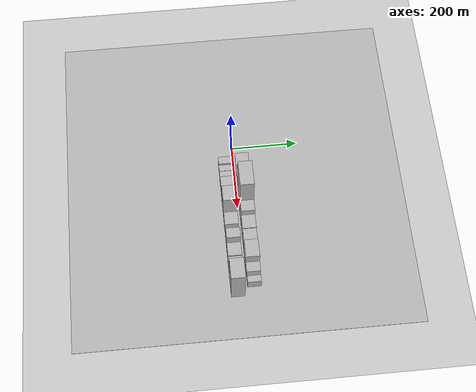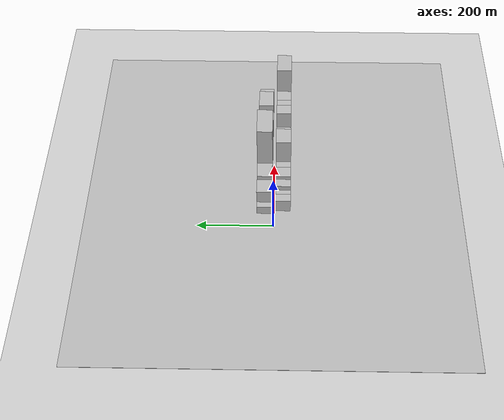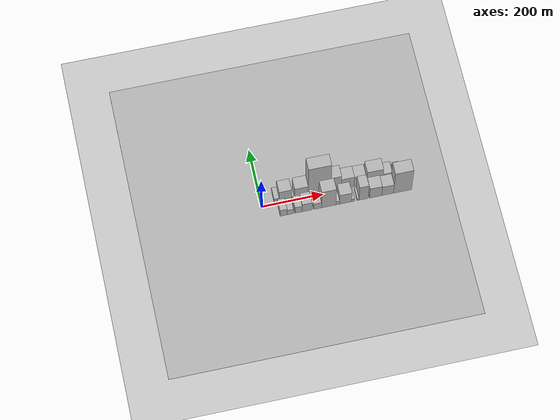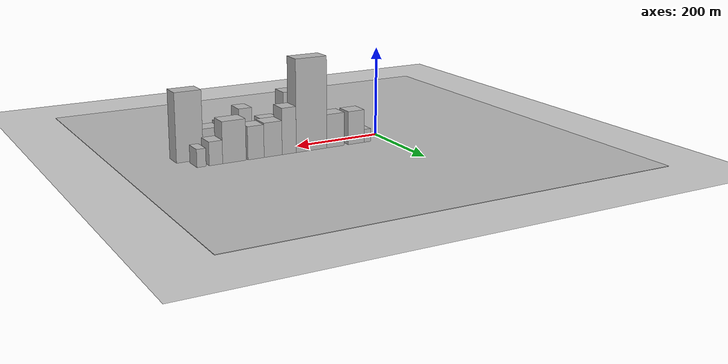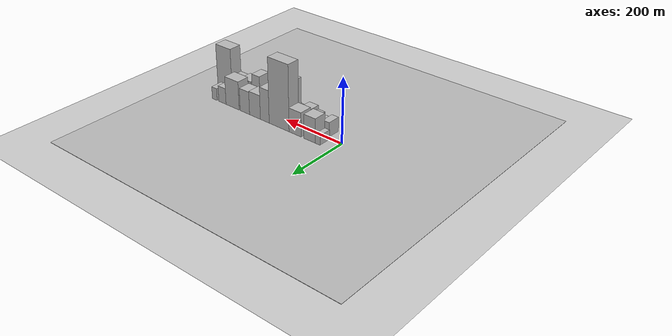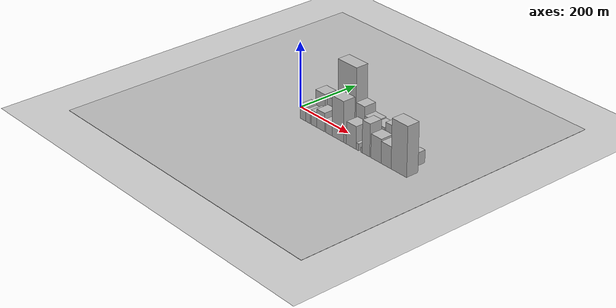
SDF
<?xml version="1.0" encoding="utf-8"?>

<sdf version="1.6">

   <world name="default">

      <gui fullscreen="0">

         <camera name="user_camera">

            <pose>-15 0 4.57585 0 0 0</pose>

            <view_controller>orbit</view_controller>

         </camera>

      </gui>

      <scene>

         <sky>

           <clouds>

             <speed>12</speed>

           </clouds>

         </sky>

         <ambient>0.4 0.4 0.4 1</ambient>

         <background>0.7 0.7 0.7 1</background>

         <shadows>1</shadows>

      </scene>

      <gravity>0 0 -9.8066</gravity>

      <magnetic_field>6e-06 2.3e-05 -4.2e-05</magnetic_field>

      <physics default="0" name="default_physics" type="ode">

         <ode>

            <solver>

               <type>quick</type>

               <iters>10</iters>

               <sor>1.0</sor>

               <use_dynamic_moi_rescaling>0</use_dynamic_moi_rescaling>

            </solver>

            <constraints>

               <cfm>0</cfm>

               <erp>0.2</erp>

               <contact_max_correcting_vel>100</contact_max_correcting_vel>

               <contact_surface_layer>0.001</contact_surface_layer>

            </constraints>

         </ode>

         <max_step_size>0.004</max_step_size>

         <real_time_factor>1</real_time_factor>

         <real_time_update_rate>250</real_time_update_rate>

      </physics>

      <light name="sun" type="directional">

         <cast_shadows>1</cast_shadows>

         <pose>0 0 10 0 0 0</pose>

         <diffuse>0.8 0.8 0.8 1</diffuse>

         <specular>0.2 0.2 0.2 1</specular>

         <attenuation>

            <range>1000</range>

            <constant>0.9</constant>

            <linear>0.01</linear>

            <quadratic>0.001</quadratic>

         </attenuation>

         <direction>-0.5 0.1 -0.9</direction>

      </light>

      <include>

         <name>ground_plane_1</name>

         <uri>model://HANNAS_ground_plane</uri>

         <pose>0 0 0  0 0 0</pose>

      </include>

      <include>

         <name>ground_plane_2</name>

         <uri>model://HANNAS_ground_plane</uri>

         <pose>100 0 0  0 0 0</pose>

      </include>

      <model name="building_1">

         <static>1</static>

         <pose frame="">48.2652 24.5000 0 0.000000 0.000000 1.570796</pose>

         <link name="link">

            <pose frame="">0 0 15.00 0 0 0</pose>

            <collision name="collision">

               <geometry>

                  <box>

                     <size>40.0000 16.5304 30.0000</size>

                  </box>

               </geometry>

               <max_contacts>10</max_contacts>

               <surface>

                  <contact>

                     <ode/>

                  </contact>

                  <bounce/>

                  <friction>

                     <torsional>

                        <ode/>

                     </torsional>

                     <ode/>

                  </friction>

               </surface>

            </collision>

            <visual name="visual">

               <cast_shadows>0</cast_shadows>

               <geometry>

                  <box>

                     <size>40.0000 16.5304 30.0000</size>

                  </box>

               </geometry>

               <material>

                  <script>

                     <uri>model://HANNAS_wall/materials/scripts</uri>

                     <uri>model://HANNAS_wall/materials/textures</uri>

                     <name>vrc/HANNAS_wall</name>

                  </script>

               </material>

            </visual>

            <self_collide>0</self_collide>

            <enable_wind>0</enable_wind>

            <kinematic>0</kinematic>

         </link>

      </model>

      <model name="building_2">

         <static>1</static>

         <pose frame="">76.6512 24.5000 0 0.000000 0.000000 1.570796</pose>

         <link name="link">

            <pose frame="">0 0 37.50 0 0 0</pose>

            <collision name="collision">

               <geometry>

                  <box>

                     <size>40.0000 40.2416 75.0000</size>

                  </box>

               </geometry>

               <max_contacts>10</max_contacts>

               <surface>

                  <contact>

                     <ode/>

                  </contact>

                  <bounce/>

                  <friction>

                     <torsional>

                        <ode/>

                     </torsional>

                     <ode/>

                  </friction>

               </surface>

            </collision>

            <visual name="visual">

               <cast_shadows>0</cast_shadows>

               <geometry>

                  <box>

                     <size>40.0000 40.2416 75.0000</size>

                  </box>

               </geometry>

               <material>

                  <script>

                     <uri>model://HANNAS_wall/materials/scripts</uri>

                     <uri>model://HANNAS_wall/materials/textures</uri>

                     <name>vrc/HANNAS_wall</name>

                  </script>

               </material>

            </visual>

            <self_collide>0</self_collide>

            <enable_wind>0</enable_wind>

            <kinematic>0</kinematic>

         </link>

      </model>

      <model name="building_3">

         <static>1</static>

         <pose frame="">128.6955 24.5000 0 0.000000 0.000000 1.570796</pose>

         <link name="link">

            <pose frame="">0 0 37.50 0 0 0</pose>

            <collision name="collision">

               <geometry>

                  <box>

                     <size>40.0000 43.8471 75.0000</size>

                  </box>

               </geometry>

               <max_contacts>10</max_contacts>

               <surface>

                  <contact>

                     <ode/>

                  </contact>

                  <bounce/>

                  <friction>

                     <torsional>

                        <ode/>

                     </torsional>

                     <ode/>

                  </friction>

               </surface>

            </collision>

            <visual name="visual">

               <cast_shadows>0</cast_shadows>

               <geometry>

                  <box>

                     <size>40.0000 43.8471 75.0000</size>

                  </box>

               </geometry>

               <material>

                  <script>

                     <uri>model://HANNAS_wall/materials/scripts</uri>

                     <uri>model://HANNAS_wall/materials/textures</uri>

                     <name>vrc/HANNAS_wall</name>

                  </script>

               </material>

            </visual>

            <self_collide>0</self_collide>

            <enable_wind>0</enable_wind>

            <kinematic>0</kinematic>

         </link>

      </model>

      <model name="building_4">

         <static>1</static>

         <pose frame="">187.5237 24.5000 0 0.000000 0.000000 1.570796</pose>

         <link name="link">

            <pose frame="">0 0 102.00 0 0 0</pose>

            <collision name="collision">

               <geometry>

                  <box>

                     <size>40.0000 73.8092 204.0000</size>

                  </box>

               </geometry>

               <max_contacts>10</max_contacts>

               <surface>

                  <contact>

                     <ode/>

                  </contact>

                  <bounce/>

                  <friction>

                     <torsional>

                        <ode/>

                     </torsional>

                     <ode/>

                  </friction>

               </surface>

            </collision>

            <visual name="visual">

               <cast_shadows>0</cast_shadows>

               <geometry>

                  <box>

                     <size>40.0000 73.8092 204.0000</size>

                  </box>

               </geometry>

               <material>

                  <script>

                     <uri>model://HANNAS_wall/materials/scripts</uri>

                     <uri>model://HANNAS_wall/materials/textures</uri>

                     <name>vrc/HANNAS_wall</name>

                  </script>

               </material>

            </visual>

            <self_collide>0</self_collide>

            <enable_wind>0</enable_wind>

            <kinematic>0</kinematic>

         </link>

      </model>

      <model name="building_5">

         <static>1</static>

         <pose frame="">241.2174 24.5000 0 0.000000 0.000000 1.570796</pose>

         <link name="link">

            <pose frame="">0 0 51.00 0 0 0</pose>

            <collision name="collision">

               <geometry>

                  <box>

                     <size>40.0000 33.5781 102.0000</size>

                  </box>

               </geometry>

               <max_contacts>10</max_contacts>

               <surface>

                  <contact>

                     <ode/>

                  </contact>

                  <bounce/>

                  <friction>

                     <torsional>

                        <ode/>

                     </torsional>

                     <ode/>

                  </friction>

               </surface>

            </collision>

            <visual name="visual">

               <cast_shadows>0</cast_shadows>

               <geometry>

                  <box>

                     <size>40.0000 33.5781 102.0000</size>

                  </box>

               </geometry>

               <material>

                  <script>

                     <uri>model://HANNAS_wall/materials/scripts</uri>

                     <uri>model://HANNAS_wall/materials/textures</uri>

                     <name>vrc/HANNAS_wall</name>

                  </script>

               </material>

            </visual>

            <self_collide>0</self_collide>

            <enable_wind>0</enable_wind>

            <kinematic>0</kinematic>

         </link>

      </model>

      <model name="building_6">

         <static>1</static>

         <pose frame="">279.0360 24.5000 0 0.000000 0.000000 1.570796</pose>

         <link name="link">

            <pose frame="">0 0 37.50 0 0 0</pose>

            <collision name="collision">

               <geometry>

                  <box>

                     <size>40.0000 42.0592 75.0000</size>

                  </box>

               </geometry>

               <max_contacts>10</max_contacts>

               <surface>

                  <contact>

                     <ode/>

                  </contact>

                  <bounce/>

                  <friction>

                     <torsional>

                        <ode/>

                     </torsional>

                     <ode/>

                  </friction>

               </surface>

            </collision>

            <visual name="visual">

               <cast_shadows>0</cast_shadows>

               <geometry>

                  <box>

                     <size>40.0000 42.0592 75.0000</size>

                  </box>

               </geometry>

               <material>

                  <script>

                     <uri>model://HANNAS_wall/materials/scripts</uri>

                     <uri>model://HANNAS_wall/materials/textures</uri>

                     <name>vrc/HANNAS_wall</name>

                  </script>

               </material>

            </visual>

            <self_collide>0</self_collide>

            <enable_wind>0</enable_wind>

            <kinematic>0</kinematic>

         </link>

      </model>

      <model name="building_7">

         <static>1</static>

         <pose frame="">318.6324 24.5000 0 0.000000 0.000000 1.570796</pose>

         <link name="link">

            <pose frame="">0 0 36.00 0 0 0</pose>

            <collision name="collision">

               <geometry>

                  <box>

                     <size>40.0000 37.1335 72.0000</size>

                  </box>

               </geometry>

               <max_contacts>10</max_contacts>

               <surface>

                  <contact>

                     <ode/>

                  </contact>

                  <bounce/>

                  <friction>

                     <torsional>

                        <ode/>

                     </torsional>

                     <ode/>

                  </friction>

               </surface>

            </collision>

            <visual name="visual">

               <cast_shadows>0</cast_shadows>

               <geometry>

                  <box>

                     <size>40.0000 37.1335 72.0000</size>

                  </box>

               </geometry>

               <material>

                  <script>

                     <uri>model://HANNAS_wall/materials/scripts</uri>

                     <uri>model://HANNAS_wall/materials/textures</uri>

                     <name>vrc/HANNAS_wall</name>

                  </script>

               </material>

            </visual>

            <self_collide>0</self_collide>

            <enable_wind>0</enable_wind>

            <kinematic>0</kinematic>

         </link>

      </model>

      <model name="building_8">

         <static>1</static>

         <pose frame="">367.6687 24.5000 0 0.000000 0.000000 1.570796</pose>

         <link name="link">

            <pose frame="">0 0 45.00 0 0 0</pose>

            <collision name="collision">

               <geometry>

                  <box>

                     <size>40.0000 52.9391 90.0000</size>

                  </box>

               </geometry>

               <max_contacts>10</max_contacts>

               <surface>

                  <contact>

                     <ode/>

                  </contact>

                  <bounce/>

                  <friction>

                     <torsional>

                        <ode/>

                     </torsional>

                     <ode/>

                  </friction>

               </surface>

            </collision>

            <visual name="visual">

               <cast_shadows>0</cast_shadows>

               <geometry>

                  <box>

                     <size>40.0000 52.9391 90.0000</size>

                  </box>

               </geometry>

               <material>

                  <script>

                     <uri>model://HANNAS_wall/materials/scripts</uri>

                     <uri>model://HANNAS_wall/materials/textures</uri>

                     <name>vrc/HANNAS_wall</name>

                  </script>

               </material>

            </visual>

            <self_collide>0</self_collide>

            <enable_wind>0</enable_wind>

            <kinematic>0</kinematic>

         </link>

      </model>

      <model name="building_9">

         <static>1</static>

         <pose frame="">408.9546 24.5000 0 0.000000 0.000000 1.570796</pose>

         <link name="link">

            <pose frame="">0 0 25.50 0 0 0</pose>

            <collision name="collision">

               <geometry>

                  <box>

                     <size>40.0000 29.6328 51.0000</size>

                  </box>

               </geometry>

               <max_contacts>10</max_contacts>

               <surface>

                  <contact>

                     <ode/>

                  </contact>

                  <bounce/>

                  <friction>

                     <torsional>

                        <ode/>

                     </torsional>

                     <ode/>

                  </friction>

               </surface>

            </collision>

            <visual name="visual">

               <cast_shadows>0</cast_shadows>

               <geometry>

                  <box>

                     <size>40.0000 29.6328 51.0000</size>

                  </box>

               </geometry>

               <material>

                  <script>

                     <uri>model://HANNAS_wall/materials/scripts</uri>

                     <uri>model://HANNAS_wall/materials/textures</uri>

                     <name>vrc/HANNAS_wall</name>

                  </script>

               </material>

            </visual>

            <self_collide>0</self_collide>

            <enable_wind>0</enable_wind>

            <kinematic>0</kinematic>

         </link>

      </model>

      <model name="building_10">

         <static>1</static>

         <pose frame="">440.7188 24.5000 0 0.000000 0.000000 1.570796</pose>

         <link name="link">

            <pose frame="">0 0 19.50 0 0 0</pose>

            <collision name="collision">

               <geometry>

                  <box>

                     <size>40.0000 19.8955 39.0000</size>

                  </box>

               </geometry>

               <max_contacts>10</max_contacts>

               <surface>

                  <contact>

                     <ode/>

                  </contact>

                  <bounce/>

                  <friction>

                     <torsional>

                        <ode/>

                     </torsional>

                     <ode/>

                  </friction>

               </surface>

            </collision>

            <visual name="visual">

               <cast_shadows>0</cast_shadows>

               <geometry>

                  <box>

                     <size>40.0000 19.8955 39.0000</size>

                  </box>

               </geometry>

               <material>

                  <script>

                     <uri>model://HANNAS_wall/materials/scripts</uri>

                     <uri>model://HANNAS_wall/materials/textures</uri>

                     <name>vrc/HANNAS_wall</name>

                  </script>

               </material>

            </visual>

            <self_collide>0</self_collide>

            <enable_wind>0</enable_wind>

            <kinematic>0</kinematic>

         </link>

      </model>

      <model name="building_11">

         <static>1</static>

         <pose frame="">60.6100 -24.5000 0 0.000000 0.000000 1.570796</pose>

         <link name="link">

            <pose frame="">0 0 22.50 0 0 0</pose>

            <collision name="collision">

               <geometry>

                  <box>

                     <size>40.0000 23.2200 45.0000</size>

                  </box>

               </geometry>

               <max_contacts>10</max_contacts>

               <surface>

                  <contact>

                     <ode/>

                  </contact>

                  <bounce/>

                  <friction>

                     <torsional>

                        <ode/>

                     </torsional>

                     <ode/>

                  </friction>

               </surface>

            </collision>

            <visual name="visual">

               <cast_shadows>0</cast_shadows>

               <geometry>

                  <box>

                     <size>40.0000 23.2200 45.0000</size>

                  </box>

               </geometry>

               <material>

                  <script>

                     <uri>model://HANNAS_wall/materials/scripts</uri>

                     <uri>model://HANNAS_wall/materials/textures</uri>

                     <name>vrc/HANNAS_wall</name>

                  </script>

               </material>

            </visual>

            <self_collide>0</self_collide>

            <enable_wind>0</enable_wind>

            <kinematic>0</kinematic>

         </link>

      </model>

      <model name="building_12">

         <static>1</static>

         <pose frame="">82.0896 -24.5000 0 0.000000 0.000000 1.570796</pose>

         <link name="link">

            <pose frame="">0 0 18.00 0 0 0</pose>

            <collision name="collision">

               <geometry>

                  <box>

                     <size>40.0000 19.7393 36.0000</size>

                  </box>

               </geometry>

               <max_contacts>10</max_contacts>

               <surface>

                  <contact>

                     <ode/>

                  </contact>

                  <bounce/>

                  <friction>

                     <torsional>

                        <ode/>

                     </torsional>

                     <ode/>

                  </friction>

               </surface>

            </collision>

            <visual name="visual">

               <cast_shadows>0</cast_shadows>

               <geometry>

                  <box>

                     <size>40.0000 19.7393 36.0000</size>

                  </box>

               </geometry>

               <material>

                  <script>

                     <uri>model://HANNAS_wall/materials/scripts</uri>

                     <uri>model://HANNAS_wall/materials/textures</uri>

                     <name>vrc/HANNAS_wall</name>

                  </script>

               </material>

            </visual>

            <self_collide>0</self_collide>

            <enable_wind>0</enable_wind>

            <kinematic>0</kinematic>

         </link>

      </model>

      <model name="building_13">

         <static>1</static>

         <pose frame="">108.5692 -24.5000 0 0.000000 0.000000 1.570796</pose>

         <link name="link">

            <pose frame="">0 0 22.50 0 0 0</pose>

            <collision name="collision">

               <geometry>

                  <box>

                     <size>40.0000 23.2200 45.0000</size>

                  </box>

               </geometry>

               <max_contacts>10</max_contacts>

               <surface>

                  <contact>

                     <ode/>

                  </contact>

                  <bounce/>

                  <friction>

                     <torsional>

                        <ode/>

                     </torsional>

                     <ode/>

                  </friction>

               </surface>

            </collision>

            <visual name="visual">

               <cast_shadows>0</cast_shadows>

               <geometry>

                  <box>

                     <size>40.0000 23.2200 45.0000</size>

                  </box>

               </geometry>

               <material>

                  <script>

                     <uri>model://HANNAS_wall/materials/scripts</uri>

                     <uri>model://HANNAS_wall/materials/textures</uri>

                     <name>vrc/HANNAS_wall</name>

                  </script>

               </material>

            </visual>

            <self_collide>0</self_collide>

            <enable_wind>0</enable_wind>

            <kinematic>0</kinematic>

         </link>

      </model>

      <model name="building_14">

         <static>1</static>

         <pose frame="">136.3193 -24.5000 0 0.000000 0.000000 1.570796</pose>

         <link name="link">

            <pose frame="">0 0 28.50 0 0 0</pose>

            <collision name="collision">

               <geometry>

                  <box>

                     <size>40.0000 32.2802 57.0000</size>

                  </box>

               </geometry>

               <max_contacts>10</max_contacts>

               <surface>

                  <contact>

                     <ode/>

                  </contact>

                  <bounce/>

                  <friction>

                     <torsional>

                        <ode/>

                     </torsional>

                     <ode/>

                  </friction>

               </surface>

            </collision>

            <visual name="visual">

               <cast_shadows>0</cast_shadows>

               <geometry>

                  <box>

                     <size>40.0000 32.2802 57.0000</size>

                  </box>

               </geometry>

               <material>

                  <script>

                     <uri>model://HANNAS_wall/materials/scripts</uri>

                     <uri>model://HANNAS_wall/materials/textures</uri>

                     <name>vrc/HANNAS_wall</name>

                  </script>

               </material>

            </visual>

            <self_collide>0</self_collide>

            <enable_wind>0</enable_wind>

            <kinematic>0</kinematic>

         </link>

      </model>

      <model name="building_15">

         <static>1</static>

         <pose frame="">170.0392 -24.5000 0 0.000000 0.000000 1.570796</pose>

         <link name="link">

            <pose frame="">0 0 21.00 0 0 0</pose>

            <collision name="collision">

               <geometry>

                  <box>

                     <size>40.0000 25.1597 42.0000</size>

                  </box>

               </geometry>

               <max_contacts>10</max_contacts>

               <surface>

                  <contact>

                     <ode/>

                  </contact>

                  <bounce/>

                  <friction>

                     <torsional>

                        <ode/>

                     </torsional>

                     <ode/>

                  </friction>

               </surface>

            </collision>

            <visual name="visual">

               <cast_shadows>0</cast_shadows>

               <geometry>

                  <box>

                     <size>40.0000 25.1597 42.0000</size>

                  </box>

               </geometry>

               <material>

                  <script>

                     <uri>model://HANNAS_wall/materials/scripts</uri>

                     <uri>model://HANNAS_wall/materials/textures</uri>

                     <name>vrc/HANNAS_wall</name>

                  </script>

               </material>

            </visual>

            <self_collide>0</self_collide>

            <enable_wind>0</enable_wind>

            <kinematic>0</kinematic>

         </link>

      </model>

      <model name="building_16">

         <static>1</static>

         <pose frame="">206.1173 -24.5000 0 0.000000 0.000000 1.570796</pose>

         <link name="link">

            <pose frame="">0 0 61.50 0 0 0</pose>

            <collision name="collision">

               <geometry>

                  <box>

                     <size>40.0000 46.9966 123.0000</size>

                  </box>

               </geometry>

               <max_contacts>10</max_contacts>

               <surface>

                  <contact>

                     <ode/>

                  </contact>

                  <bounce/>

                  <friction>

                     <torsional>

                        <ode/>

                     </torsional>

                     <ode/>

                  </friction>

               </surface>

            </collision>

            <visual name="visual">

               <cast_shadows>0</cast_shadows>

               <geometry>

                  <box>

                     <size>40.0000 46.9966 123.0000</size>

                  </box>

               </geometry>

               <material>

                  <script>

                     <uri>model://HANNAS_wall/materials/scripts</uri>

                     <uri>model://HANNAS_wall/materials/textures</uri>

                     <name>vrc/HANNAS_wall</name>

                  </script>

               </material>

            </visual>

            <self_collide>0</self_collide>

            <enable_wind>0</enable_wind>

            <kinematic>0</kinematic>

         </link>

      </model>

      <model name="building_17">

         <static>1</static>

         <pose frame="">235.5361 -24.5000 0 0.000000 0.000000 1.570796</pose>

         <link name="link">

            <pose frame="">0 0 13.50 0 0 0</pose>

            <collision name="collision">

               <geometry>

                  <box>

                     <size>40.0000 11.8410 27.0000</size>

                  </box>

               </geometry>

               <max_contacts>10</max_contacts>

               <surface>

                  <contact>

                     <ode/>

                  </contact>

                  <bounce/>

                  <friction>

                     <torsional>

                        <ode/>

                     </torsional>

                     <ode/>

                  </friction>

               </surface>

            </collision>

            <visual name="visual">

               <cast_shadows>0</cast_shadows>

               <geometry>

                  <box>

                     <size>40.0000 11.8410 27.0000</size>

                  </box>

               </geometry>

               <material>

                  <script>

                     <uri>model://HANNAS_wall/materials/scripts</uri>

                     <uri>model://HANNAS_wall/materials/textures</uri>

                     <name>vrc/HANNAS_wall</name>

                  </script>

               </material>

            </visual>

            <self_collide>0</self_collide>

            <enable_wind>0</enable_wind>

            <kinematic>0</kinematic>

         </link>

      </model>

      <model name="building_18">

         <static>1</static>

         <pose frame="">261.0873 -24.5000 0 0.000000 0.000000 1.570796</pose>

         <link name="link">

            <pose frame="">0 0 34.50 0 0 0</pose>

            <collision name="collision">

               <geometry>

                  <box>

                     <size>40.0000 39.2613 69.0000</size>

                  </box>

               </geometry>

               <max_contacts>10</max_contacts>

               <surface>

                  <contact>

                     <ode/>

                  </contact>

                  <bounce/>

                  <friction>

                     <torsional>

                        <ode/>

                     </torsional>

                     <ode/>

                  </friction>

               </surface>

            </collision>

            <visual name="visual">

               <cast_shadows>0</cast_shadows>

               <geometry>

                  <box>

                     <size>40.0000 39.2613 69.0000</size>

                  </box>

               </geometry>

               <material>

                  <script>

                     <uri>model://HANNAS_wall/materials/scripts</uri>

                     <uri>model://HANNAS_wall/materials/textures</uri>

                     <name>vrc/HANNAS_wall</name>

                  </script>

               </material>

            </visual>

            <self_collide>0</self_collide>

            <enable_wind>0</enable_wind>

            <kinematic>0</kinematic>

         </link>

      </model>

      <model name="building_19">

         <static>1</static>

         <pose frame="">285.5718 -24.5000 0 0.000000 0.000000 1.570796</pose>

         <link name="link">

            <pose frame="">0 0 10.50 0 0 0</pose>

            <collision name="collision">

               <geometry>

                  <box>

                     <size>40.0000 9.7077 21.0000</size>

                  </box>

               </geometry>

               <max_contacts>10</max_contacts>

               <surface>

                  <contact>

                     <ode/>

                  </contact>

                  <bounce/>

                  <friction>

                     <torsional>

                        <ode/>

                     </torsional>

                     <ode/>

                  </friction>

               </surface>

            </collision>

            <visual name="visual">

               <cast_shadows>0</cast_shadows>

               <geometry>

                  <box>

                     <size>40.0000 9.7077 21.0000</size>

                  </box>

               </geometry>

               <material>

                  <script>

                     <uri>model://HANNAS_wall/materials/scripts</uri>

                     <uri>model://HANNAS_wall/materials/textures</uri>

                     <name>vrc/HANNAS_wall</name>

                  </script>

               </material>

            </visual>

            <self_collide>0</self_collide>

            <enable_wind>0</enable_wind>

            <kinematic>0</kinematic>

         </link>

      </model>

      <model name="building_20">

         <static>1</static>

         <pose frame="">301.5697 -24.5000 0 0.000000 0.000000 1.570796</pose>

         <link name="link">

            <pose frame="">0 0 7.50 0 0 0</pose>

            <collision name="collision">

               <geometry>

                  <box>

                     <size>40.0000 6.2881 15.0000</size>

                  </box>

               </geometry>

               <max_contacts>10</max_contacts>

               <surface>

                  <contact>

                     <ode/>

                  </contact>

                  <bounce/>

                  <friction>

                     <torsional>

                        <ode/>

                     </torsional>

                     <ode/>

                  </friction>

               </surface>

            </collision>

            <visual name="visual">

               <cast_shadows>0</cast_shadows>

               <geometry>

                  <box>

                     <size>40.0000 6.2881 15.0000</size>

                  </box>

               </geometry>

               <material>

                  <script>

                     <uri>model://HANNAS_wall/materials/scripts</uri>

                     <uri>model://HANNAS_wall/materials/textures</uri>

                     <name>vrc/HANNAS_wall</name>

                  </script>

               </material>

            </visual>

            <self_collide>0</self_collide>

            <enable_wind>0</enable_wind>

            <kinematic>0</kinematic>

         </link>

      </model>

      <model name="building_21">

         <static>1</static>

         <pose frame="">319.7406 -24.5000 0 0.000000 0.000000 1.570796</pose>

         <link name="link">

            <pose frame="">0 0 49.50 0 0 0</pose>

            <collision name="collision">

               <geometry>

                  <box>

                     <size>40.0000 30.0538 99.0000</size>

                  </box>

               </geometry>

               <max_contacts>10</max_contacts>

               <surface>

                  <contact>

                     <ode/>

                  </contact>

                  <bounce/>

                  <friction>

                     <torsional>

                        <ode/>

                     </torsional>

                     <ode/>

                  </friction>

               </surface>

            </collision>

            <visual name="visual">

               <cast_shadows>0</cast_shadows>

               <geometry>

                  <box>

                     <size>40.0000 30.0538 99.0000</size>

                  </box>

               </geometry>

               <material>

                  <script>

                     <uri>model://HANNAS_wall/materials/scripts</uri>

                     <uri>model://HANNAS_wall/materials/textures</uri>

                     <name>vrc/HANNAS_wall</name>

                  </script>

               </material>

            </visual>

            <self_collide>0</self_collide>

            <enable_wind>0</enable_wind>

            <kinematic>0</kinematic>

         </link>

      </model>

      <model name="building_22">

         <static>1</static>

         <pose frame="">358.7888 -24.5000 0 0.000000 0.000000 1.570796</pose>

         <link name="link">

            <pose frame="">0 0 36.00 0 0 0</pose>

            <collision name="collision">

               <geometry>

                  <box>

                     <size>40.0000 40.0427 72.0000</size>

                  </box>

               </geometry>

               <max_contacts>10</max_contacts>

               <surface>

                  <contact>

                     <ode/>

                  </contact>

                  <bounce/>

                  <friction>

                     <torsional>

                        <ode/>

                     </torsional>

                     <ode/>

                  </friction>

               </surface>

            </collision>

            <visual name="visual">

               <cast_shadows>0</cast_shadows>

               <geometry>

                  <box>

                     <size>40.0000 40.0427 72.0000</size>

                  </box>

               </geometry>

               <material>

                  <script>

                     <uri>model://HANNAS_wall/materials/scripts</uri>

                     <uri>model://HANNAS_wall/materials/textures</uri>

                     <name>vrc/HANNAS_wall</name>

                  </script>

               </material>

            </visual>

            <self_collide>0</self_collide>

            <enable_wind>0</enable_wind>

            <kinematic>0</kinematic>

         </link>

      </model>

      <model name="building_23">

         <static>1</static>

         <pose frame="">398.0863 -24.5000 0 0.000000 0.000000 1.570796</pose>

         <link name="link">

            <pose frame="">0 0 33.00 0 0 0</pose>

            <collision name="collision">

               <geometry>

                  <box>

                     <size>40.0000 38.5523 66.0000</size>

                  </box>

               </geometry>

               <max_contacts>10</max_contacts>

               <surface>

                  <contact>

                     <ode/>

                  </contact>

                  <bounce/>

                  <friction>

                     <torsional>

                        <ode/>

                     </torsional>

                     <ode/>

                  </friction>

               </surface>

            </collision>

            <visual name="visual">

               <cast_shadows>0</cast_shadows>

               <geometry>

                  <box>

                     <size>40.0000 38.5523 66.0000</size>

                  </box>

               </geometry>

               <material>

                  <script>

                     <uri>model://HANNAS_wall/materials/scripts</uri>

                     <uri>model://HANNAS_wall/materials/textures</uri>

                     <name>vrc/HANNAS_wall</name>

                  </script>

               </material>

            </visual>

            <self_collide>0</self_collide>

            <enable_wind>0</enable_wind>

            <kinematic>0</kinematic>

         </link>

      </model>

      <model name="building_24">

         <static>1</static>

         <pose frame="">446.8894 -24.5000 0 0.000000 0.000000 1.570796</pose>

         <link name="link">

            <pose frame="">0 0 75.00 0 0 0</pose>

            <collision name="collision">

               <geometry>

                  <box>

                     <size>40.0000 59.0541 150.0000</size>

                  </box>

               </geometry>

               <max_contacts>10</max_contacts>

               <surface>

                  <contact>

                     <ode/>

                  </contact>

                  <bounce/>

                  <friction>

                     <torsional>

                        <ode/>

                     </torsional>

                     <ode/>

                  </friction>

               </surface>

            </collision>

            <visual name="visual">

               <cast_shadows>0</cast_shadows>

               <geometry>

                  <box>

                     <size>40.0000 59.0541 150.0000</size>

                  </box>

               </geometry>

               <material>

                  <script>

                     <uri>model://HANNAS_wall/materials/scripts</uri>

                     <uri>model://HANNAS_wall/materials/textures</uri>

                     <name>vrc/HANNAS_wall</name>

                  </script>

               </material>

            </visual>

            <self_collide>0</self_collide>

            <enable_wind>0</enable_wind>

            <kinematic>0</kinematic>

         </link>

      </model>

   </world>

</sdf>

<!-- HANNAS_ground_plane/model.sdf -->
<sdf version="1.4">
<model name="HANNAS_ground_plane">
  <static>true</static>
    <link name="link">
      <collision name="collision">
        <geometry>
          <plane>
            <normal>0 0 1</normal>
            <size>1000 1000</size>
          </plane>
        </geometry>
        <surface>
          <friction>
            <ode>
              <mu>100</mu>
              <mu2>50</mu2>
            </ode>
          </friction>
        </surface>
      </collision>
      <visual name="visual">
        <cast_shadows>false</cast_shadows>
        <geometry>
          <plane>
            <normal>0 0 1</normal>
            <size>1000 1000</size>
          </plane>
        </geometry>
        <material>
          <script>
            <uri>model://HANNAS_ground_plane/materials/scripts/HANNAS_ground_plane.material</uri>
	    <uri>model://HANNAS_ground_plane/materials/textures</uri>
            <name>HANNASGroundPlane/Image</name>
          </script>
        </material>
      </visual>
    </link>
  </model>
</sdf>
